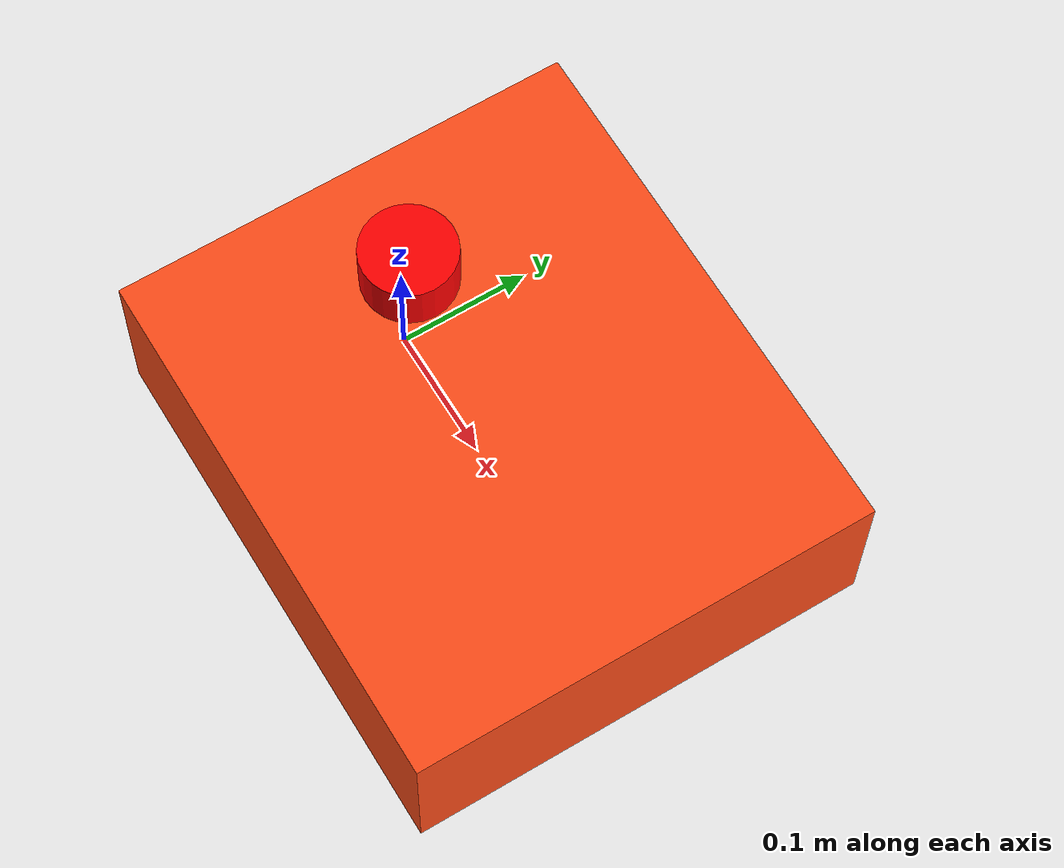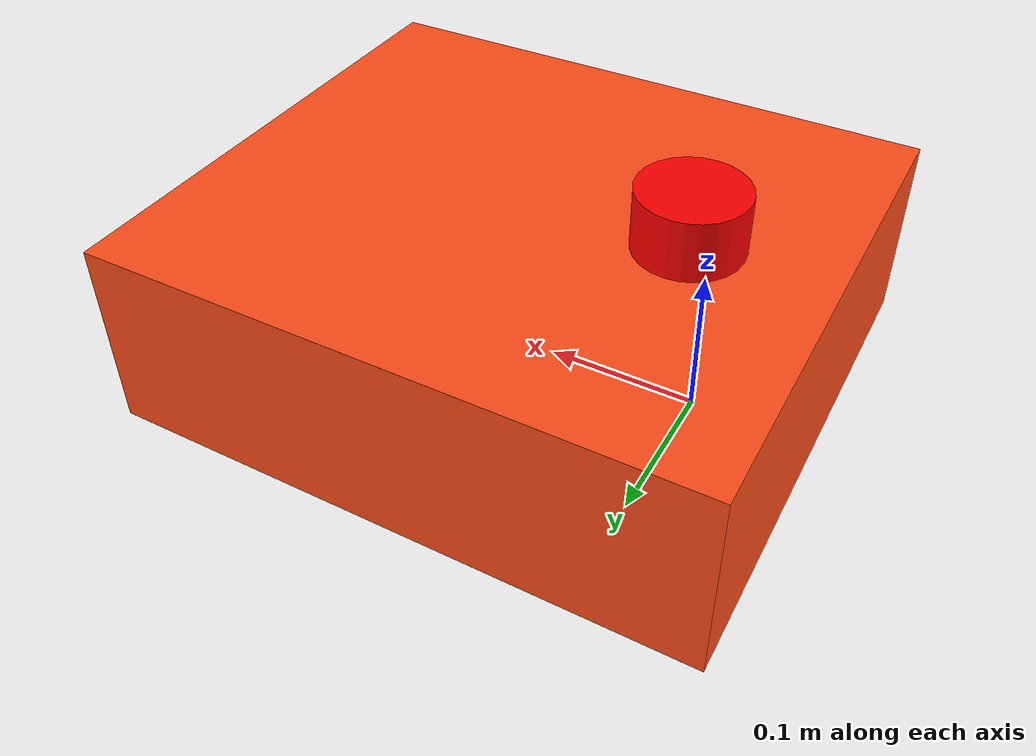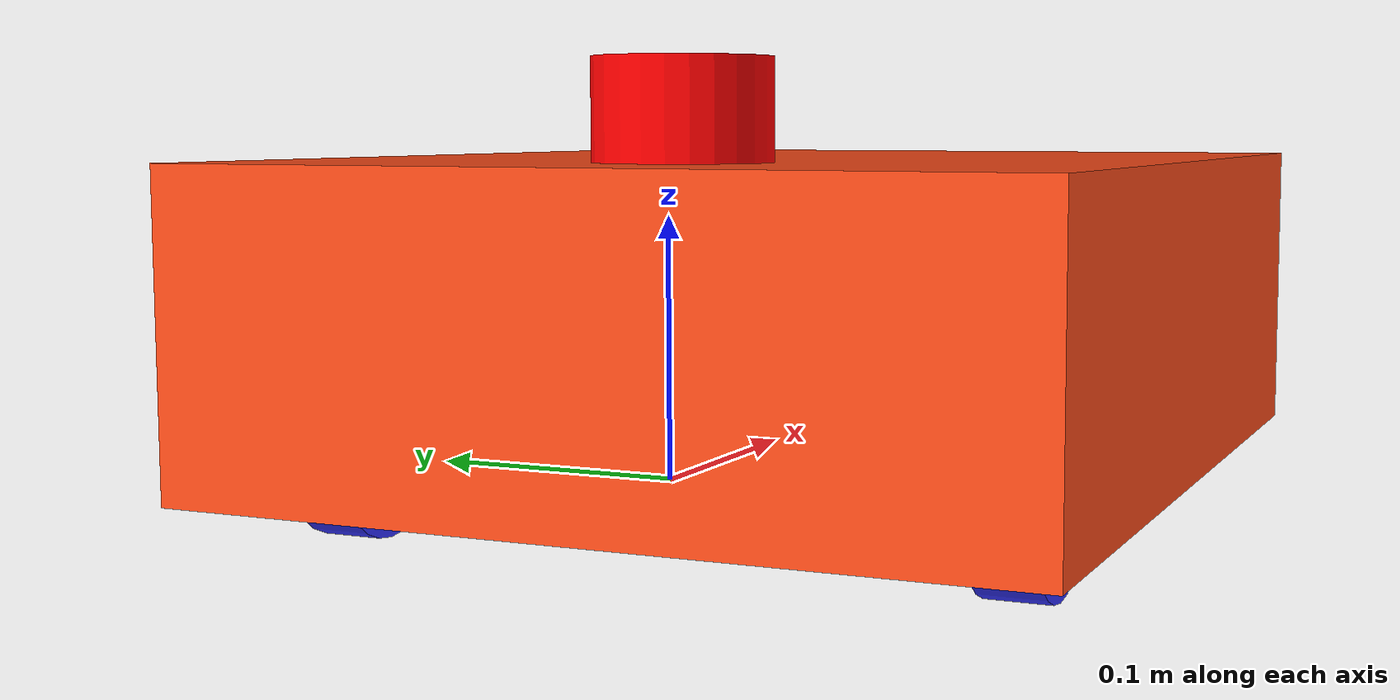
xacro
<?xml version="1.0"?>
<robot xmlns:xacro="http://www.ros.org/wiki/xacro"  name="robot">

    <xacro:arg name="use_ros2_control" default="true"/>
    <xacro:arg name="sim_mode" default="true"/>

    <xacro:include filename="robot_core.xacro" />

    <xacro:if value="$(arg use_ros2_control)">
        <xacro:include filename="ros2_control.xacro" />
    </xacro:if>
    <xacro:unless value="$(arg use_ros2_control)">
        <xacro:include filename="gazebo_control.xacro" />
    </xacro:unless>
    <xacro:include filename="lidar.xacro" />

</robot>

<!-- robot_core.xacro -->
<robot xmlns:xacro="http://www.ros.org/wiki/xacro" >

    <xacro:include filename="inertial_macros.xacro"/>

    <xacro:property name="chassis_length" value="0.400"/>
    <xacro:property name="chassis_width" value="0.350"/>
    <xacro:property name="chassis_height" value="0.13"/>
    <xacro:property name="chassis_mass" value="2.5"/>
    <xacro:property name="wheel_radius" value="0.033"/>
    <xacro:property name="wheel_thickness" value="0.026"/>
    <xacro:property name="wheel_mass" value="0.05"/>
    <xacro:property name="wheel_offset_x" value="0.08"/>
    <xacro:property name="wheel_offset_y" value="0.140"/>
    <xacro:property name="wheel_offset_z" value="0.01"/>
    <xacro:property name="caster_wheel_radius" value="0.016"/>
    <xacro:property name="caster_wheel_mass" value="0.1"/>
    <xacro:property name="caster_wheel_offset_x" value="0.3725"/>
    <xacro:property name="caster_wheel_offset_z" value="${wheel_offset_z - wheel_radius + caster_wheel_radius - 0.002}"/>

    <material name="white">
        <color rgba="1 1 1 1" />
    </material>

    <material name="orange">
        <color rgba="1 0.3 0.1 1"/>
    </material>

    <material name="blue">
        <color rgba="0.2 0.2 1 1"/>
    </material>

    <material name="black">
        <color rgba="0 0 0 1"/>
    </material>

    <material name="red">
        <color rgba="1 0 0 1"/>
    </material>

    <!-- BASE LINK -->

    <link name="base_link">

    </link>

    <!-- BASE_FOOTPRINT LINK -->

    <joint name="base_footprint_joint" type="fixed">
        <parent link="base_link"/>
        <child link="base_footprint"/>
        <origin xyz="0 0 0" rpy="0 0 0"/>
    </joint>

    <link name="base_footprint">
    </link>

    <!-- CHASSIS LINK -->

    <joint name="chassis_joint" type="fixed">
        <parent link="base_link"/>
        <child link="chassis"/>
        <origin xyz="${-wheel_offset_x} 0 ${-wheel_offset_z}"/>
    </joint>

    <link name="chassis">
        <visual>
            <origin xyz="${chassis_length/2} 0 ${chassis_height/2}"/>
            <geometry>
                <box size="${chassis_length} ${chassis_width} ${chassis_height}"/>
            </geometry>
            <material name="orange"/>
        </visual>
        <collision>
            <origin xyz="${chassis_length/2} 0 ${chassis_height/2}"/>
            <geometry>
                <box size="${chassis_length} ${chassis_width} ${chassis_height}"/>
            </geometry>
        </collision>
        <xacro:inertial_box mass="0.5" x="${chassis_length}" y="${chassis_width}" z="${chassis_height}">
            <origin xyz="${chassis_length/2} 0 ${chassis_height/2}" rpy="0 0 0"/>
        </xacro:inertial_box>
    </link>

    <gazebo reference="chassis">
        <material>Gazebo/Orange</material>
    </gazebo>

    <!-- LEFT WHEEL LINK -->

    <joint name="left_wheel_joint" type="continuous">
        <parent link="base_link"/>
        <child link="left_wheel"/>
        <origin xyz="0 ${wheel_offset_y} 0" rpy="-${pi/2} 0 0" />
        <axis xyz="0 0 1"/>
    </joint>

    <link name="left_wheel">
        <visual>
            <geometry>
                <cylinder radius="${wheel_radius}" length="${wheel_thickness}"/>
            </geometry>
            <material name="blue"/>
        </visual>
        <collision>
            <geometry>
                <sphere radius="${wheel_radius}"/>
            </geometry>
        </collision>
        <xacro:inertial_cylinder mass="${wheel_mass}" length="${wheel_thickness}" radius="${wheel_radius}">
            <origin xyz="0 0 0" rpy="0 0 0"/>
        </xacro:inertial_cylinder>
    </link>

    <gazebo reference="left_wheel">
        <material>Gazebo/Blue</material>
    </gazebo>

    <!-- RIGHT WHEEL LINK -->

    <joint name="right_wheel_joint" type="continuous">
        <parent link="base_link"/>
        <child link="right_wheel"/>
        <origin xyz="0 ${-wheel_offset_y} 0" rpy="${pi/2} 0 0" />
        <axis xyz="0 0 -1"/>
    </joint>

    <link name="right_wheel">
        <visual>
            <geometry>
                <cylinder radius="${wheel_radius}" length="${wheel_thickness}"/>
            </geometry>
            <material name="blue"/>
        </visual>
        <collision>
            <geometry>
                <sphere radius="${wheel_radius}"/>
            </geometry>
        </collision>
        <xacro:inertial_cylinder mass="${wheel_mass}" length="${wheel_thickness}" radius="${wheel_radius}">
            <origin xyz="0 0 0" rpy="0 0 0"/>
        </xacro:inertial_cylinder>
    </link>

    <gazebo reference="right_wheel">
        <material>Gazebo/Blue</material>
    </gazebo>

    <!-- CASTER WHEEL LINK -->

    <joint name="caster_wheel_joint" type="fixed">
        <parent link="chassis"/>
        <child link="caster_wheel"/>
        <origin xyz="${caster_wheel_offset_x} 0 ${caster_wheel_offset_z}"/>
    </joint>

    <link name="caster_wheel">
        <visual>
            <geometry>
                <sphere radius="${caster_wheel_radius}"/>
            </geometry>
            <material name="white"/>
        </visual>
        <collision>
            <geometry>
                <sphere radius="${caster_wheel_radius}"/>
            </geometry>
        </collision>
        <xacro:inertial_sphere mass="${caster_wheel_mass}" radius="${caster_wheel_radius}">
            <origin xyz="0 0 0" rpy="0 0 0"/>
        </xacro:inertial_sphere>
    </link>

    <gazebo reference="caster_wheel">
        <material>Gazebo/White</material>
        <mu1 value="0.001"/>
        <mu2 value="0.001"/>
    </gazebo>

        <!-- BUMBER SENSOR -->

    <gazebo>
    <plugin name="bumper_plugin" filename="libgazebo_ros_bumper.so">
        <ros>
        <namespace>/</namespace>
        <remapping>bumper_states:=/bumper</remapping>
        </ros>
        <frame_name>base_link</frame_name>
    </plugin>
    </gazebo>

    <!-- IMU Sensor -->
    <link name="imu_link">
    <inertial>
        <mass value="0.1"/>
        <inertia ixx="0.001" ixy="0.0" ixz="0.0"
                iyy="0.001" iyz="0.0"
                izz="0.001"/>
    </inertial>
    </link>

    <joint name="imu_joint" type="fixed">
    <parent link="base_link"/>
    <child link="imu_link"/>
    <origin xyz="0.1 0 0.1" rpy="0 0 0"/>
    </joint>

    <gazebo reference="imu_link">
    <sensor name="imu_sensor" type="imu">
        <always_on>true</always_on>
        <update_rate>100</update_rate>
        <topic>imu/data_raw</topic>
        <plugin filename="libgazebo_ros_imu_sensor.so" name="imu_plugin">
        <ros>
            <namespace>/</namespace>
            <remapping>~/out:=imu/data_raw</remapping>
        </ros>
        <initial_orientation_as_reference>true</initial_orientation_as_reference>
        </plugin>
    </sensor>
    </gazebo>

</robot>

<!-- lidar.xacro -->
<robot xmlns:xacro="http://www.ros.org/wiki/xacro" >

    <joint name="laser_joint" type="fixed">
        <parent link="chassis"/>
        <child link="laser_frame"/>
        <origin xyz="0.093 0 0.15" rpy="0 0 0"/>
    </joint>

    <link name="laser_frame">
        <visual>
            <geometry>
                <cylinder radius="0.035" length="0.04"/>
            </geometry>
            <material name="red"/>
        </visual>
        <collision>
            <geometry>
                <cylinder radius="0.035" length="0.04"/>
            </geometry>
        </collision>
        <xacro:inertial_cylinder mass="0.1" length="0.04" radius="0.035">
            <origin xyz="0 0 0" rpy="0 0 0"/>
        </xacro:inertial_cylinder>
    </link>

    <gazebo reference="laser_frame">
        <material>Gazebo/Red</material>

        <sensor name="laser" type="ray">
            <pose> 0 0 0 0 0 0 </pose>
            <visualize>false</visualize>
            <update_rate>10</update_rate>
            <ray>
                <scan>
                    <horizontal>
                        <samples>360</samples>
                        <min_angle>-3.14</min_angle>
                        <max_angle>3.14</max_angle>
                    </horizontal>
                </scan>
                <range>
                    <min>0.3</min>
                    <max>12</max>
                </range>
            </ray>
            <plugin name="laser_controller" filename="libgazebo_ros_ray_sensor.so">
                <ros>
                    <argument>~/out:=scan</argument>
                </ros>
                <output_type>sensor_msgs/LaserScan</output_type>
                <frame_name>laser_frame</frame_name>
            </plugin>
        </sensor>
    </gazebo>

</robot>
